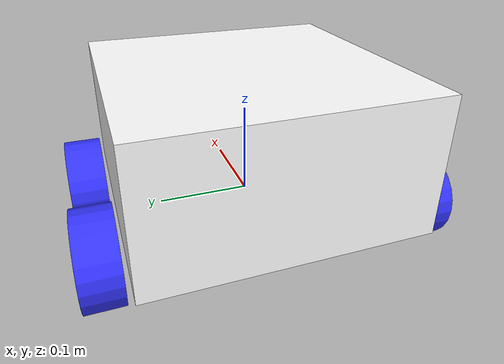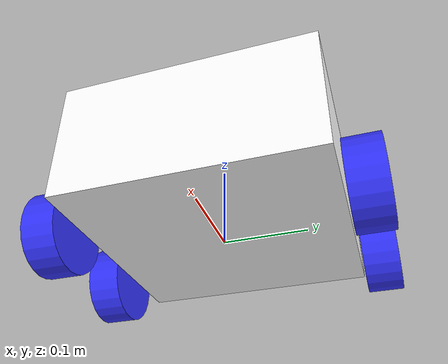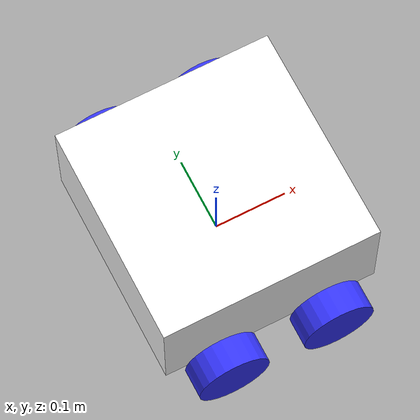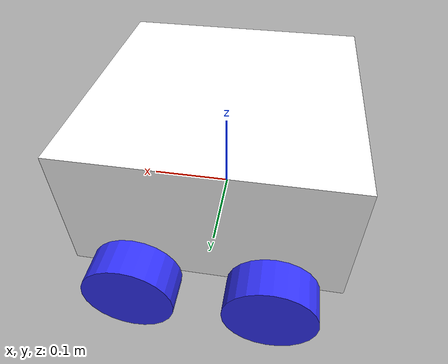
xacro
<?xml version="1.0"?>
<robot xmlns:xacro="https://www.ros.org/wiki/xacro">

    <xacro:include filename="inertial_macros.xacro"/>

    <material name="white">
        <color rgba="1 1 1 1" />
    </material>

    <material name="orange">
        <color rgba="1 0.3 0.1 1" />
    </material>

    <material name="blue">
        <color rgba="0.2 0.2 1 1" />
    </material>

    <material name="black">
        <color rgba="0 0 0 1" />
    </material>

    <link name="base_link"/>

    <!-- CHASSIS -->
    <joint name="chassis_joint" type="fixed">
        <parent link="base_link"/>
        <child link="chassis"/>
        <origin xyz="-0.15 0 0"/>
    </joint>

    <link name="chassis">
        <visual>
            <origin xyz="0.15 0 0.075"/>
            <geometry>
                <box size="0.3 0.3 0.15"/>
            </geometry>
            <material name="white"/>
        </visual>

        <collision>
            <origin xyz="0.15 0 0.075"/>
            <geometry>
                <box size="0.3 0.3 0.15"/>
            </geometry>
        </collision>

        <xacro:inertial_box mass="0.5" x="0.3" y="0.3" z="0.15">
            <origin xyz="0.15 0 0.075" rpy="0 0 0"/>
        </xacro:inertial_box>

    </link>

    <gazebo reference="chassis">
        <material>Gazebo/White</material>
    </gazebo>

    <!-- FRONT LEFT WHEEL -->
    <joint name="front_left_wheel_joint" type="continuous">
        <parent link="base_link"/>
        <child link="front_left_wheel"/>
        <origin xyz="0.075 0.175 0" rpy="-${pi/2} 0 0"/>
        <axis xyz="0 0 1"/>
    </joint>

    <link name="front_left_wheel">
        <visual>
            <geometry>
                <cylinder radius="0.05" length="0.04"/>
            </geometry>
            <material name="blue"/>
        </visual>

        <collision>
            <geometry>
                <cylinder radius="0.05" length="0.04"/>
            </geometry>
        </collision>

        <xacro:inertial_cylinder mass="0.1" length="0.04" radius="0.05">
            <origin xyz="0 0 0" rpy="0 0 0"/>
        </xacro:inertial_cylinder>

    </link>

    <gazebo reference="front_left_wheel">
        <material>Gazebo/Blue</material>
        <mu1 value="0.0"/>
        <mu2 value="0.0"/>
    </gazebo>

    <!-- BACK LEFT WHEEL -->
    <joint name="back_left_wheel_joint" type="continuous">
        <parent link="base_link"/>
        <child link="back_left_wheel"/>
        <origin xyz="-0.075 0.175 0" rpy="-${pi/2} 0 0"/>
        <axis xyz="0 0 1"/>
    </joint>

    <link name="back_left_wheel">
        <visual>
            <geometry>
                <cylinder radius="0.05" length="0.04"/>
            </geometry>
            <material name="blue"/>
        </visual>

        <collision>
            <geometry>
                <cylinder radius="0.05" length="0.04"/>
            </geometry>
        </collision>

        <xacro:inertial_cylinder mass="0.1" length="0.04" radius="0.05">
            <origin xyz="0 0 0" rpy="0 0 0"/>
        </xacro:inertial_cylinder>

    </link>

    <gazebo reference="back_left_wheel">
        <material>Gazebo/Blue</material>
        <mu1 value="0.0"/>
        <mu2 value="0.0"/>
    </gazebo>

    <!-- FRONT RIGHT WHEEL -->
    <joint name="front_right_wheel_joint" type="continuous">
        <parent link="base_link"/>
        <child link="front_right_wheel"/>
        <origin xyz="0.075 -0.175 0" rpy="${pi/2} 0 0"/>
        <axis xyz="0 0 -1"/>
    </joint>

    <link name="front_right_wheel">
        <visual>
            <geometry>
                <cylinder radius="0.05" length="0.04"/>
            </geometry>
            <material name="blue"/>
        </visual>

        <collision>
            <geometry>
                <cylinder radius="0.05" length="0.04"/>
            </geometry>
        </collision>

        <xacro:inertial_cylinder mass="0.1" length="0.04" radius="0.05">
            <origin xyz="0 0 0" rpy="0 0 0"/>
        </xacro:inertial_cylinder>

    </link>

    <gazebo reference="front_right_wheel">
        <material>Gazebo/Blue</material>
        <mu1 value="0.0"/>
        <mu2 value="0.0"/>
    </gazebo>

    <!-- BACK RIGHT WHEEL -->
    <joint name="back_right_wheel_joint" type="continuous">
        <parent link="base_link"/>
        <child link="back_right_wheel"/>
        <origin xyz="-0.075 -0.175 0" rpy="${pi/2} 0 0"/>
        <axis xyz="0 0 -1"/>
    </joint>

    <link name="back_right_wheel">
        <visual>
            <geometry>
                <cylinder radius="0.05" length="0.04"/>
            </geometry>
            <material name="blue"/>
        </visual>

        <collision>
            <geometry>
                <cylinder radius="0.05" length="0.04"/>
            </geometry>
        </collision>

        <xacro:inertial_cylinder mass="0.1" length="0.04" radius="0.05">
            <origin xyz="0 0 0" rpy="0 0 0"/>
        </xacro:inertial_cylinder>

    </link>

    <gazebo reference="back_right_wheel">
        <material>Gazebo/Blue</material>
        <mu1 value="0.0"/>
        <mu2 value="0.0"/>
    </gazebo>

</robot>
